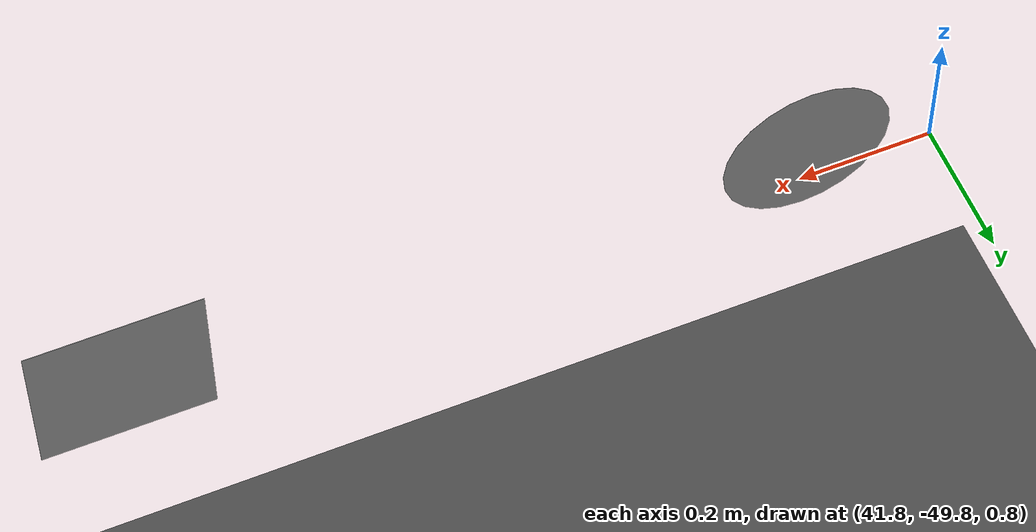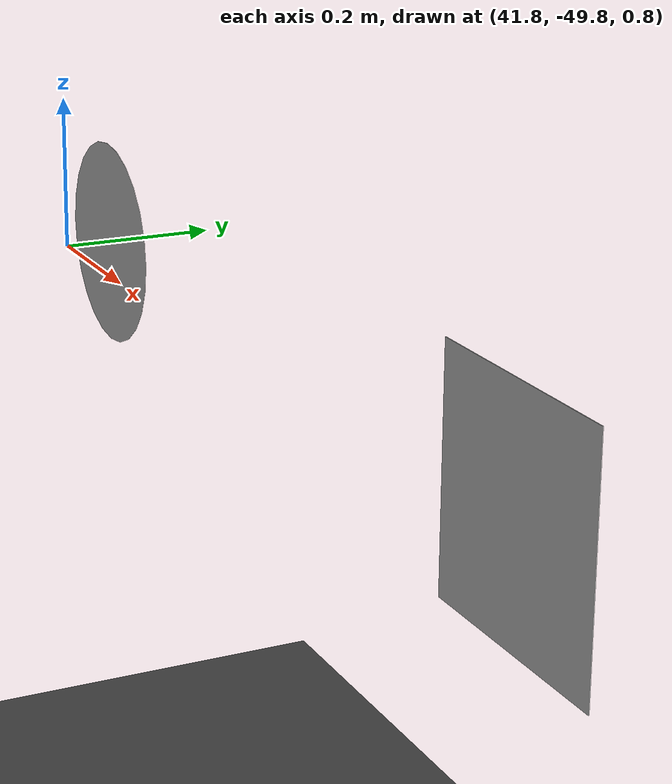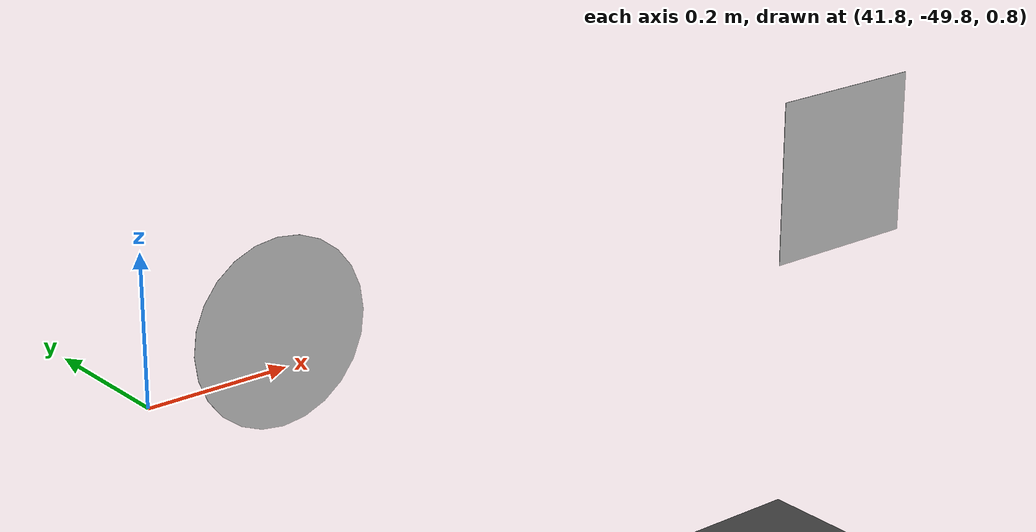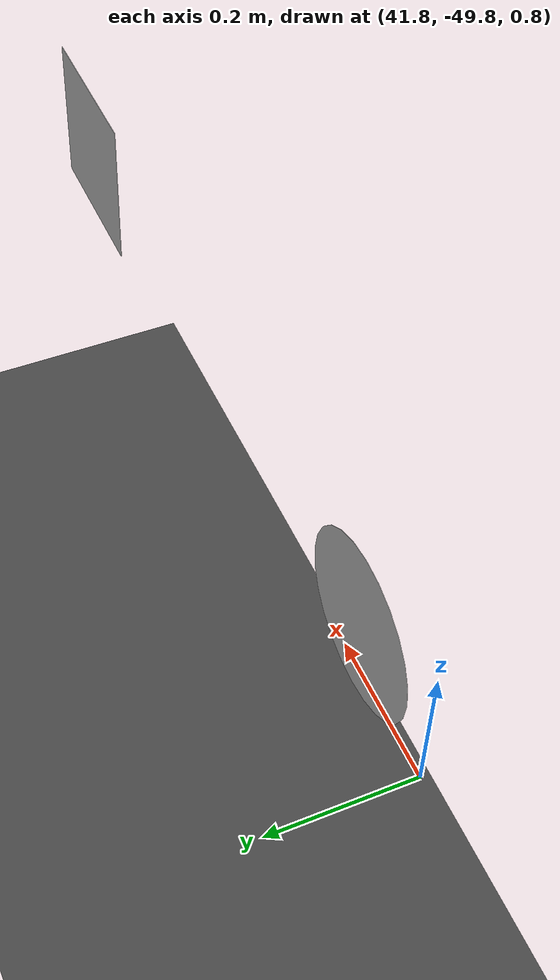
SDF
<sdf version="1.7">
 <world name="default">
  <model name="ground_plane">
   <static>1</static>
   <link name="link">
    <collision name="collision">
     <geometry><plane><normal>0 0 1</normal><size>100 100</size></plane></geometry>
     <surface>
      <contact><collide_bitmask>65535</collide_bitmask></contact>
      <friction><ode><mu>100</mu><mu2>50</mu2></ode></friction>
     </surface>
    </collision>
    <visual name="visual">
     <cast_shadows>0</cast_shadows>
     <geometry><plane><normal>0 0 1</normal><size>100 100</size></plane></geometry>
     <material>
      <script><uri>file://media/materials/scripts/gazebo.material</uri><name>Gazebo/DarkGrey</name></script>
     </material>
    </visual>
   </link>
  </model>
  <model name="park_clone">
   <link name="link">
    <inertial>
     <mass>0.521459</mass>
     <inertia>
      <ixx>0.0434554</ixx>
      <ixy>0</ixy>
      <ixz>0</ixz>
      <iyy>0.0869098</iyy>
      <iyz>0</iyz>
      <izz>0.0434554</izz>
     </inertia>
    </inertial>
    <gravity>0</gravity>
    <visual name="visual">
     <geometry><box><size>0.25 0.003487 0.25</size></box></geometry>
     <material>
      <script>
       <uri>file://park/materials/scripts/park.material</uri>
       <uri>file://park/materials/textures/park.png</uri>
       <name>RepeatedTexture12</name>
      </script>
      <shader type="pixel"><normal_map>__default__</normal_map></shader>
      <ambient>0 0 0 1</ambient>
      <diffuse>0.7 0.7 0.7 1</diffuse>
      <specular>0.01 0.01 0.01 1</specular>
      <emissive>0 0 0 1</emissive>
      <lighting>0</lighting>
     </material>
     <transparency>1</transparency>
    </visual>
    <collision name="collision">
     <geometry><box><size>0.25 0.0001 0.25</size></box></geometry>
     <surface>
      <friction>
       <ode><mu>1</mu><mu2>1</mu2><fdir1>0 0 0</fdir1><slip1>0</slip1><slip2>0</slip2></ode>
       <torsional>
        <coefficient>1</coefficient>
        <patch_radius>0</patch_radius>
        <surface_radius>0</surface_radius>
        <use_patch_radius>1</use_patch_radius>
        <ode><slip>0</slip></ode>
       </torsional>
      </friction>
      <bounce><restitution_coefficient>0</restitution_coefficient><threshold>1e+06</threshold></bounce>
      <contact>
       <collide_without_contact>0</collide_without_contact>
       <collide_without_contact_bitmask>1</collide_without_contact_bitmask>
       <collide_bitmask>1</collide_bitmask>
       <ode>
        <soft_cfm>0</soft_cfm>
        <soft_erp>0.2</soft_erp>
        <kp>1e+13</kp>
        <kd>1</kd>
        <max_vel>0.01</max_vel>
        <min_depth>0</min_depth>
       </ode>
       <bullet>
        <split_impulse>1</split_impulse>
        <split_impulse_penetration_threshold>-0.01</split_impulse_penetration_threshold>
        <soft_cfm>0</soft_cfm>
        <soft_erp>0.2</soft_erp>
        <kp>1e+13</kp>
        <kd>1</kd>
       </bullet>
      </contact>
     </surface>
    </collision>
   </link>
   <static>1</static>
   <pose>42.9798 -49.8099 0.857075 0 -0 0</pose>
  </model>
  <model name="square_clone">
   <link name="link">
    <inertial>
     <mass>1</mass>
     <inertia>
      <ixx>0.166667</ixx>
      <ixy>0</ixy>
      <ixz>0</ixz>
      <iyy>0.166667</iyy>
      <iyz>0</iyz>
      <izz>0.166667</izz>
     </inertia>
    </inertial>
    <gravity>0</gravity>
    <visual name="visual">
     <geometry><box><size>0.250163 0.000931 0.247777</size></box></geometry>
     <material>
      <script><name>Gazebo/Grey</name><uri>file://media/materials/scripts/gazebo.material</uri></script>
      <shader type="pixel"><normal_map>__default__</normal_map></shader>
     </material>
    </visual>
    <collision name="collision">
     <geometry><box><size>0.250163 0.000931 0.247777</size></box></geometry>
     <surface>
      <friction>
       <ode><mu>1</mu><mu2>1</mu2><fdir1>0 0 0</fdir1><slip1>0</slip1><slip2>0</slip2></ode>
       <torsional>
        <coefficient>1</coefficient>
        <patch_radius>0</patch_radius>
        <surface_radius>0</surface_radius>
        <use_patch_radius>1</use_patch_radius>
        <ode><slip>0</slip></ode>
       </torsional>
      </friction>
      <bounce><restitution_coefficient>0</restitution_coefficient><threshold>1e+06</threshold></bounce>
      <contact>
       <collide_without_contact>0</collide_without_contact>
       <collide_without_contact_bitmask>1</collide_without_contact_bitmask>
       <collide_bitmask>1</collide_bitmask>
       <ode>
        <soft_cfm>0</soft_cfm>
        <soft_erp>0.2</soft_erp>
        <kp>1e+13</kp>
        <kd>1</kd>
        <max_vel>0.01</max_vel>
        <min_depth>0</min_depth>
       </ode>
       <bullet>
        <split_impulse>1</split_impulse>
        <split_impulse_penetration_threshold>-0.01</split_impulse_penetration_threshold>
        <soft_cfm>0</soft_cfm>
        <soft_erp>0.2</soft_erp>
        <kp>1e+13</kp>
        <kd>1</kd>
       </bullet>
      </contact>
     </surface>
    </collision>
   </link>
   <static>1</static>
   <pose>42.9808 -49.8152 0.858223 0 -0 0</pose>
  </model>
  <model name="circle_clone">
   <link name="link">
    <inertial>
     <mass>1</mass>
     <inertia><ixx>0.145833</ixx><ixy>0</ixy><ixz>0</ixz><iyy>0.145833</iyy><iyz>0</iyz><izz>0.125</izz></inertia>
    </inertial>
    <visual name="visual">
     <geometry><cylinder><radius>0.126069</radius><length>0.000448721</length></cylinder></geometry>
     <material>
      <script><name>Gazebo/Grey</name><uri>file://media/materials/scripts/gazebo.material</uri></script>
      <shader type="pixel"/>
     </material>
    </visual>
    <collision name="collision">
     <geometry><cylinder><radius>0.126069</radius><length>0.000449</length></cylinder></geometry>
     <surface>
      <friction>
       <ode><mu>1</mu><mu2>1</mu2><fdir1>0 0 0</fdir1><slip1>0</slip1><slip2>0</slip2></ode>
       <torsional>
        <coefficient>1</coefficient>
        <patch_radius>0</patch_radius>
        <surface_radius>0</surface_radius>
        <use_patch_radius>1</use_patch_radius>
        <ode><slip>0</slip></ode>
       </torsional>
      </friction>
      <bounce><restitution_coefficient>0</restitution_coefficient><threshold>1e+06</threshold></bounce>
      <contact>
       <collide_without_contact>0</collide_without_contact>
       <collide_without_contact_bitmask>1</collide_without_contact_bitmask>
       <collide_bitmask>1</collide_bitmask>
       <ode>
        <soft_cfm>0</soft_cfm>
        <soft_erp>0.2</soft_erp>
        <kp>1e+13</kp>
        <kd>1</kd>
        <max_vel>0.01</max_vel>
        <min_depth>0</min_depth>
       </ode>
       <bullet>
        <split_impulse>1</split_impulse>
        <split_impulse_penetration_threshold>-0.01</split_impulse_penetration_threshold>
        <soft_cfm>0</soft_cfm>
        <soft_erp>0.2</soft_erp>
        <kp>1e+13</kp>
        <kd>1</kd>
       </bullet>
      </contact>
     </surface>
    </collision>
   </link>
   <static>1</static>
   <pose>41.9877 -49.8095 0.85285 1.5708 -0 0</pose>
  </model>
 </world>
</sdf>
